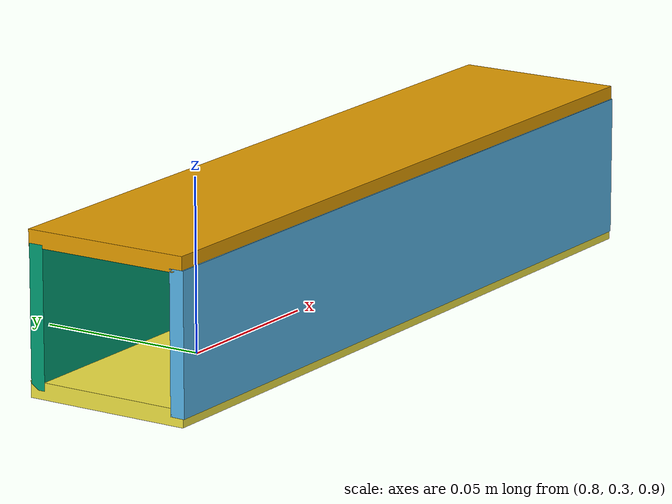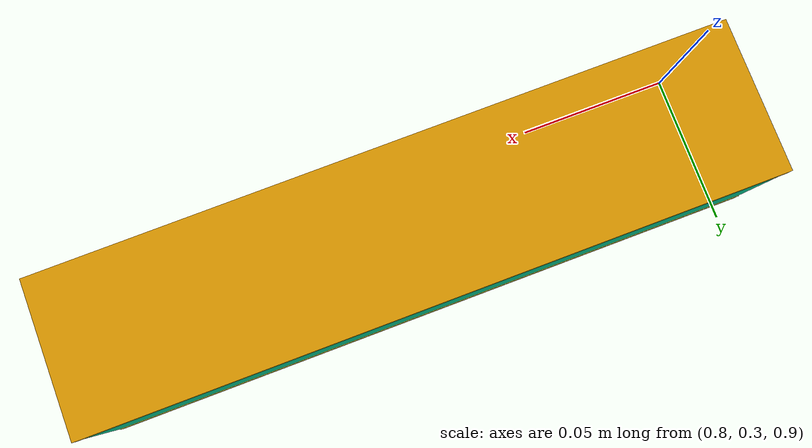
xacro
<?xml version="1.0" ?>
<!-- |    This document was autogenerated by xacro from ur5_joint_limited_robot.urdf.xacro | -->
<!-- |    EDITING THIS FILE BY HAND IS NOT RECOMMENDED                                 | -->

<robot name="simpleTube">
 <link name="my_box1">
    <inertial>
      <origin xyz="0.9 0.32 0.9295"/>
      <mass value="0.5" />
      <inertia  ixx="0.0" ixy="0.0"  ixz="0.0"  iyy="100.0"  iyz="0.0"  izz="1.0" />
    </inertial>
    <visual>
      <origin xyz="0.9 0.32 0.9295" />
      <geometry>
       <box size="0.23 0.0513  0.005" />
      </geometry>
    </visual>
    <collision>
      <origin  xyz="0.9 0.32 0.9295" />
      <geometry>
        <box size="0.23 0.0513  0.005" />
      </geometry>
    </collision>
  </link>

  <link name="my_box2">
    <inertial>
      <origin  xyz="0.9 0.29619 0.907"  />
      <mass value="0.5" />
      <inertia  ixx="0.0" ixy="0.0"  ixz="0.0"  iyy="100.0"  iyz="0.0"  izz="1.0" />
    </inertial>
    <visual>
      <origin  xyz="0.9 0.29619 0.907"   />
      <geometry>
       <box size="0.23 0.0045 0.042" />
      </geometry>
    </visual>
    <collision>
      <origin   xyz="0.9 0.29619 0.907"  />
      <geometry>
        <box size="0.23 0.0045 0.042" />
      </geometry>
    </collision>
  </link>

  <link name="my_box3">
    <inertial>
      <origin  xyz="0.9 0.34321 0.907" />
      <mass value="0.5" />
      <inertia  ixx="0.0" ixy="0.0"  ixz="0.0"  iyy="100.0"  iyz="0.0"  izz="1.0" />
    </inertial>
    <visual>
      <origin  xyz="0.9 0.34321 0.907"  />
      <geometry>
       <box size="0.23 0.0045 0.042" />
      </geometry>
    </visual>
    <collision>
      <origin  xyz="0.9 0.34321 0.907" />
      <geometry>
        <box size="0.23 0.0045 0.042" />
      </geometry>
    </collision>
  </link>

 <link name="my_box4">
    <inertial>
      <origin xyz="0.9 0.32 0.886"/>
      <mass value="0.5" />
      <inertia  ixx="0.0" ixy="0.0"  ixz="0.0"  iyy="100.0"  iyz="0.0"  izz="1.0" />
    </inertial>
    <visual>
      <origin xyz="0.9 0.32 0.886" />
      <geometry>
       <box size="0.23 0.0513  0.005" />
      </geometry>
    </visual>
    <collision>
      <origin  xyz="0.9 0.32 0.886" />
      <geometry>
        <box size="0.23 0.0513 0.005" />
      </geometry>
    </collision>
  </link>

  <link name="world"/>

    <joint name ="joint_3" type="fixed">
    <origin xyz="0 0 0 " rpy="0 0 0 "/>
    <parent link="world"/>
    <child link ="my_box4"/>
  </joint>
    <joint name ="joint_5" type="fixed">
    <origin xyz="0 0 0 " rpy="0 0 0 "/>
    <parent link="my_box2"/>
    <child link ="my_box1"/>
  </joint>
      <joint name ="joint_4" type="fixed">
    <origin xyz="0 0 0 " rpy="0 0 0 "/>
    <parent link="my_box4"/>
    <child link ="my_box2"/>
  </joint>

    <joint name ="joint_6" type="fixed">
    <origin xyz="0 0 0 " rpy="0 0 0 "/>
    <parent link="my_box4"/>
    <child link ="my_box3"/>
  </joint>

</robot>
